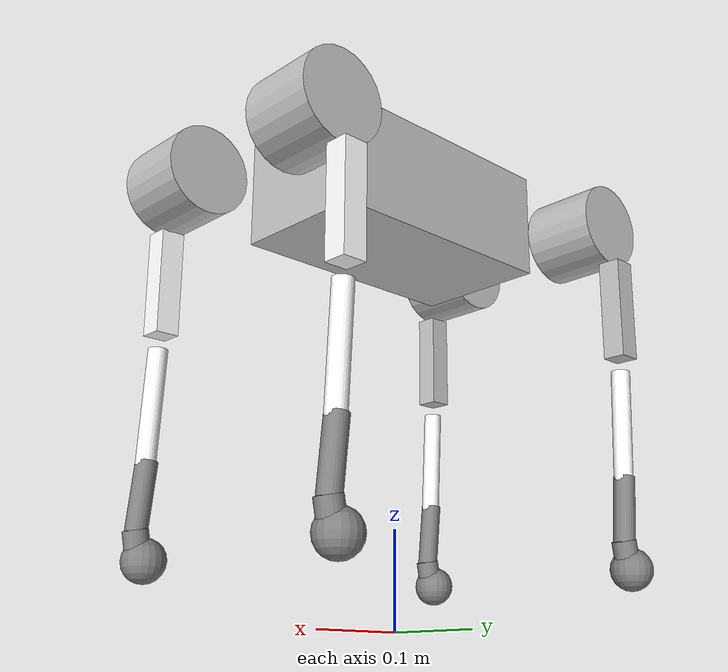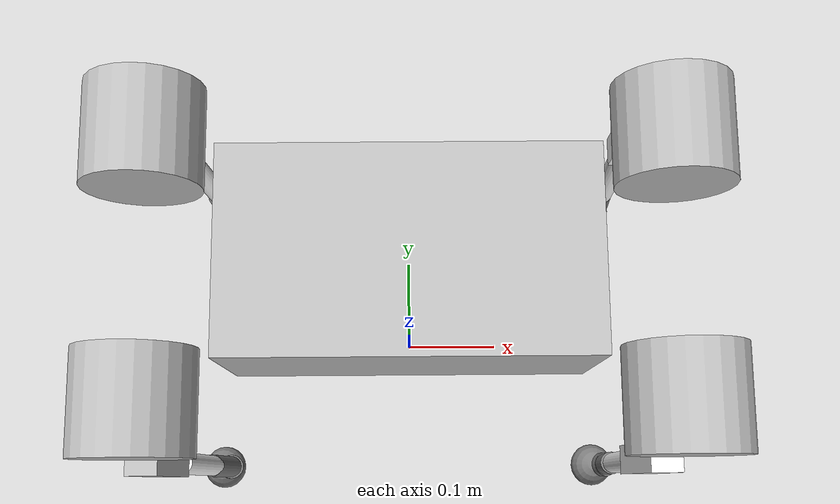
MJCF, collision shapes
<mujoco model="TOE_dog">

  <compiler angle="radian" meshdir="assets" autolimits="true"/>
  <option cone="elliptic" impratio="100" />
  <default>
    <default class="dog">
      <geom friction="0.4" margin="0.001" condim="1"/>
      <joint axis="0 1 0" damping="0.1" armature="0.005" frictionloss="0.05"/>
      <motor ctrlrange="-23.7 23.7"/>
      <default class="visual">
        <geom type="mesh" contype="0" conaffinity="0" group="2"/>
      </default>

      <default class="collision">
        <geom group="3"/>
        <default class="foot">
          <geom size="0.022" pos="-0.002 0 -0.20051" priority="1" condim="6"
            friction="1.2 0.02 0.01"/>
        </default>
      </default>

    </default>
  </default>
  <asset>
    <material name="metal" rgba=".9 .95 .95 1" />
    <material name="black" rgba="0 0 0 1" />
    <material name="white" rgba="1 1 1 1" />

    <material name="gray" rgba="0.671705 0.692426 0.774270 1" />
    <mesh name="TOE_base" file="TOE_base.STL"/>
    <mesh name="TOE_FL_hip" file="TOE_FL_hip.STL"/>
    <mesh name="TOE_L_thigh" file="TOE_L_thigh.STL"/>
    <mesh name="TOE_calf" file="TOE_calf.STL"/>
    <mesh name="TOE_foot" file="TOE_foot.STL"/>
    <mesh file="foot.obj" />
    <mesh name="TOE_FR_hip" file="TOE_FR_hip.STL"/>
    <mesh name="TOE_R_thigh" file="TOE_R_thigh.STL"/>
    <mesh name="TOE_RL_hip" file="TOE_RL_hip.STL"/>
    <mesh name="TOE_RR_hip" file="TOE_RR_hip.STL"/>
  </asset>

  <worldbody>
    <body name="base" pos="0 0 0.445" childclass="dog">
    <inertial pos="0 0 0" quat="-0.000543471 0.713435 -0.00173769 0.700719"
      mass="5.1234705"
      diaginertia="0.0656641 0.0578995 0.0175231" />
    <freejoint />
    <site name='imu' size='0.01' pos='0.0 0 0.0'/>
    <geom type="mesh" contype="0" conaffinity="0" group="1" density="0" rgba="0.752941 0.752941 0.752941 1" mesh="TOE_base"/>
    <geom size="0.135 0.075 0.057" type="box" rgba="0.752941 0.752941 0.752941 1"/>

    <body name="FL_hip" pos="0.2 0.05 0">
      <inertial pos="0 0 0" quat="0.485437 0.52726 0.503798 0.48222" mass="0.669901" diaginertia="0.000851635 0.000609749 0.000545446"/>
      <joint name="FL_hip_joint" pos="0 0 0" axis="1 0 0" range="-1 1" actuatorfrcrange="-23 23"/>

      <geom type="mesh" contype="0" conaffinity="0" group="1" density="0" rgba="0.752941 0.752941 0.752941 1" mesh="TOE_FL_hip"/>
      <geom size="0.046 0.04" pos="0 0.05 0" quat="0.707105 0.707108 0 0" type="cylinder" rgba="0.752941 0.752941 0.752941 1"/>

      <body name="FL_thigh" pos="0 0.08953 0">
        <inertial pos="0 -0.0225193 -0.0253115" quat="0.980354 0.13425 0.0229827 -0.142673" mass="1.05419" diaginertia="0.00435723 0.00426548 0.00116428"/>
        <joint name="FL_thigh_joint" pos="0 0 0" axis="0 1 0" range="-1.5 2.5" actuatorfrcrange="-23 23"/>
        <geom type="mesh" contype="0" conaffinity="0" group="1" density="0" rgba="0.752941 0.752941 0.752941 1" mesh="TOE_L_thigh"/>
        <geom size="0.055 0.01225 0.0125" pos="-0.005 0 -0.1" quat="0.707107 0 0.707107 0" type="box" rgba="1 1 1 1"/>
        <body name="FL_calf" pos="0 0 -0.18">
          <inertial pos="2.20012e-06 0 -0.0899722" quat="0.768153 0.0269288 0.0143643 0.639538" mass="0.22" diaginertia="0.00164183 0.00163561 5.05888e-05"/>

          <joint name="FL_calf_joint" pos="0 0 0" axis="0 1 0" range="-2.6 -0.15" actuatorfrcrange="-35 35"/>
          <geom type="mesh" contype="0" conaffinity="0" group="2" density="0" rgba="0.752941 0.752941 0.752941 1" mesh="TOE_calf"/>

          <geom size="0.01 0.06" pos="0 0 -0.05" quat="0.999688 0 -0.0249974 0" type="cylinder" rgba="1 1 1 1"/>
          <geom size="0.011 0.035" pos="0.005 0 -0.14" quat="0.99875 0 -0.0499792 0" type="cylinder"/>
          <geom size="0.0125 0.01" pos="0.007203 0 -0.18199" quat="0.995004 0 0.0998334 0" type="cylinder"/>

          <geom pos="0 0 -0.20051" mesh="foot" class="visual" material="black" />
          <geom name="FL" class="foot" />
          <body name="FL_foot" pos="0 0 -0.20051" />

        </body>
      </body>
    </body>
    <body name="FR_hip" pos="0.2 -0.05 0">
      <inertial pos="0 0 0" quat="0.503798 0.48222 0.485437 0.52726" mass="0.669901" diaginertia="0.000851635 0.000609749 0.000545446"/>
      <joint name="FR_hip_joint" pos="0 0 0" axis="1 0 0" range="-1 1" actuatorfrcrange="-23 23"/>
      <geom type="mesh" contype="0" conaffinity="0" group="1" density="0" rgba="0.752941 0.752941 0.752941 1" mesh="TOE_FR_hip"/>
      <geom size="0.046 0.04" pos="0 -0.05 0" quat="0.707107 0.707107 0 0" type="cylinder" rgba="0.752941 0.752941 0.752941 1"/>
      <body name="FR_thigh" pos="0 -0.08953 0">
        <inertial pos="0 0.022389 -0.026316" quat="0.988507 -0.136232 -0.00402235 -0.0654148" mass="1.05822" diaginertia="0.00435124 0.00427162 0.00116411"/>
        <joint name="FR_thigh_joint" pos="0 0 0" axis="0 1 0" range="-1.5 2.5" actuatorfrcrange="-23 23"/>
        <geom type="mesh" contype="0" conaffinity="0" group="1" density="0" rgba="0.75294 0.75294 0.75294 1" mesh="TOE_R_thigh"/>
        <geom size="0.055 0.01225 0.0125" pos="-0.005 0 -0.1" quat="0.707107 0 0.707107 0" type="box" rgba="1 1 1 1"/>
        <body name="FR_calf" pos="0 0 -0.18">
          <inertial pos="2.20013e-06 0 -0.0899722" quat="0.784656 0.0173719 -0.000694465 0.619687" mass="0.22" diaginertia="0.00225074 0.0022481 4.70681e-05"/>

          <joint name="FR_calf_joint" pos="0 0 0" axis="0 1 0" range="-2.6 -0.15" actuatorfrcrange="-35 35"/>
          <geom type="mesh" contype="0" conaffinity="0" group="1" density="0" rgba="0.752941 0.752941 0.752941 1" mesh="TOE_calf"/>

                     <geom size="0.01 0.06" pos="0 0 -0.05" quat="0.999688 0 -0.0249974 0" type="cylinder" rgba="1 1 1 1"/>
          <geom size="0.011 0.035" pos="0.005 0 -0.14" quat="0.99875 0 -0.0499792 0" type="cylinder"/>
          <geom size="0.0125 0.01" pos="0.007203 0 -0.18199" quat="0.995004 0 0.0998334 0" type="cylinder"/>
          <geom pos="0 0 -0.20051" mesh="foot" class="visual" material="black" />

          <geom name="FR" class="foot" />
          <body name="FR_foot" pos="0 0 -0.20051" />

        </body>
      </body>
    </body>
    <body name="RL_hip" pos="-0.2 0.05 0">
      <inertial pos="0 0 0" quat="0.460656 0.523594 0.50641 0.507144" mass="0.669901" diaginertia="0.00085164 0.000609744 0.000545446"/>
      <joint name="RL_hip_joint" pos="0 0 0" axis="1 0 0" range="-1 1" actuatorfrcrange="-23 23"/>
      <geom type="mesh" contype="0" conaffinity="0" group="1" density="0" rgba="0.752941 0.752941 0.752941 1" mesh="TOE_RL_hip"/>
      <geom size="0.046 0.04" pos="0 0.05 0" quat="0.707107 0.707107 0 0" type="cylinder" rgba="0.752941 0.752941 0.752941 1"/>
      <body name="RL_thigh" pos="0 0.08953 0">
        <inertial pos="0 -0.0225193 -0.0253115" quat="0.989072 0.134036 0.028844 -0.0542121" mass="1.05419" diaginertia="0.00435414 0.00427351 0.00116666"/>
        <joint name="RL_thigh_joint" pos="0 0 0" axis="0 1 0" range="-1.5 2.5" actuatorfrcrange="-23 23"/>
        <geom type="mesh" contype="0" conaffinity="0" group="1" density="0" rgba="0.752941 0.752941 0.752941 1" mesh="TOE_L_thigh"/>
<geom size="0.055 0.01225 0.0125" pos="-0.005 0 -0.1" quat="0.707107 0 0.707107 0" type="box" rgba="0.752941 0.752941 0.752941 1"/>
        <body name="RL_calf" pos="0 0 -0.18">
          <inertial pos="2.20012e-06 0 -0.0899722" quat="0.589757 0.00217462 -0.0158376 0.807423" mass="0.22" diaginertia="0.00224982 0.0022483 4.68694e-05"/>
          <joint name="RL_calf_joint" pos="0 0 0" axis="0 1 0" range="-2.6 -0.15" actuatorfrcrange="-35 35"/>
          <geom type="mesh" contype="0" conaffinity="0" group="1" density="0" rgba="0.752941 0.752941 0.752941 1" mesh="TOE_calf"/>
          <geom size="0.01 0.06" pos="0 0 -0.05" quat="0.999688 0 -0.0249974 0" type="cylinder" rgba="1 1 1 1"/>
          <geom size="0.011 0.035" pos="0.005 0 -0.14" quat="0.99875 0 -0.0499792 0" type="cylinder"/>
          <geom size="0.0125 0.01" pos="0.007203 0 -0.18199" quat="0.995004 0 0.0998334 0" type="cylinder"/>
          <geom pos="0 0 -0.20051" mesh="foot" class="visual" material="black" />
          <geom name="RL" class="foot" />
          <body name="RL_foot" pos="0 0 -0.20051" />
        </body>
      </body>
    </body>
    <body name="RR_hip" pos="-0.2 -0.05 0">
      <inertial pos="0 0 0" quat="0.50641 0.507144 0.460656 0.523594" mass="0.669901" diaginertia="0.00085164 0.000609744 0.000545446"/>
      <joint name="RR_hip_joint" pos="0 0 0" axis="1 0 0" range="-1 1" actuatorfrcrange="-23 23"/>
      <geom type="mesh" contype="0" conaffinity="0" group="1" density="0" rgba="0.752941 0.752941 0.752941 1" mesh="TOE_RR_hip"/>
      <geom size="0.046 0.04" pos="0 -0.05 0" quat="0.707107 0.707107 0 0" type="cylinder" rgba="0.752941 0.752941 0.752941 1"/>
      <body name="RR_thigh" pos="0 -0.08953 0">
        <inertial pos="0 0.0223887 -0.0263162" quat="0.98398 -0.0928968 0.0223897 0.150504" mass="1.05822" diaginertia="0.0044277 0.00434271 0.00116706"/>
        <joint name="RR_thigh_joint" pos="0 0 0" axis="0 1 0" range="-1.5 2.5" actuatorfrcrange="-23 23"/>
        <geom type="mesh" contype="0" conaffinity="0" group="1" density="0" rgba="0.752941 0.752941 0.752941 1" mesh="TOE_R_thigh"/>
          <geom size="0.055 0.01225 0.0125" pos="-0.005 0 -0.1" quat="0.707107 0 0.707107 0" type="box" rgba="0.752941 0.752941 0.752941 1"/>
        <body name="RR_calf" pos="0 0 -0.18">
          <inertial pos="2.20012e-06 0 -0.0899722" quat="0.633334 0.00270795 -0.015959 0.773709" mass="0.22" diaginertia="0.00225069 0.00224833 4.69019e-05"/>
          <joint name="RR_calf_joint" pos="0 0 0" axis="0 1 0" range="-2.6 -0.15" actuatorfrcrange="-35 35"/>
          <geom type="mesh" contype="0" conaffinity="0" group="1" density="0" rgba="0.752941 0.752941 0.752941 1" mesh="TOE_calf"/>
          <geom size="0.01 0.06" pos="0 0 -0.05" quat="0.999688 0 -0.0249974 0" type="cylinder" rgba="1 1 1 1"/>
          <geom size="0.011 0.035" pos="0.005 0 -0.14" quat="0.99875 0 -0.0499792 0" type="cylinder"/>
          <geom size="0.0125 0.01" pos="0.007203 0 -0.18199" quat="0.995004 0 0.0998334 0" type="cylinder"/>
          <geom pos="0 0 -0.20051" mesh="foot" class="visual" material="black" />
          <geom name="RR" class="foot" />
          <body name="RR_foot" pos="0 0 -0.20051" />
          </body>
        </body>
      </body>
    </body>
  </worldbody>
  <actuator>

    <motor name="FL_hip_joint" joint="FL_hip_joint" gear="1" ctrllimited="true" ctrlrange="-20 20"/>
		<motor name="FL_thigh_joint" joint="FL_thigh_joint" gear="1" ctrllimited="true" ctrlrange="-20 20"/>
		<motor name="FL_calf_joint" joint="FL_calf_joint" gear="1" ctrllimited="true" ctrlrange="-25 25"/>

		<motor name="FR_hip_joint" joint="FR_hip_joint" gear="1" ctrllimited="true" ctrlrange="-20 20"/>
		<motor name="FR_thigh_joint" joint="FR_thigh_joint" gear="1" ctrllimited="true" ctrlrange="-20 20"/>
		<motor name="FR_calf_joint" joint="FR_calf_joint" gear="1" ctrllimited="true" ctrlrange="-25 25"/>

    <motor name="RL_hip_joint" joint="RL_hip_joint" gear="1" ctrllimited="true" ctrlrange="-20 20"/>
		<motor name="RL_thigh_joint" joint="RL_thigh_joint" gear="1" ctrllimited="true" ctrlrange="-20 20"/>
		<motor name="RL_calf_joint" joint="RL_calf_joint" gear="1" ctrllimited="true" ctrlrange="-25 25"/>

		<motor name="RR_hip_joint" joint="RR_hip_joint" gear="1" ctrllimited="true" ctrlrange="-20 20"/>
		<motor name="RR_thigh_joint" joint="RR_thigh_joint" gear="1" ctrllimited="true" ctrlrange="-20 20"/>
		<motor name="RR_calf_joint" joint="RR_calf_joint" gear="1" ctrllimited="true" ctrlrange="-25 25"/>

  </actuator>
  <sensor>
    <jointpos name="FL_hip_pos" joint="FL_hip_joint" />
    <jointpos name="FL_thigh_pos" joint="FL_thigh_joint" />
    <jointpos name="FL_calf_pos" joint="FL_calf_joint" />
    <jointpos name="FR_hip_pos" joint="FR_hip_joint" />
    <jointpos name="FR_thigh_pos" joint="FR_thigh_joint" />
    <jointpos name="FR_calf_pos" joint="FR_calf_joint" />
    <jointpos name="RL_hip_pos" joint="RL_hip_joint" />
    <jointpos name="RL_thigh_pos" joint="RL_thigh_joint" />
    <jointpos name="RL_calf_pos" joint="RL_calf_joint" />
    <jointpos name="RR_hip_pos" joint="RR_hip_joint" />
    <jointpos name="RR_thigh_pos" joint="RR_thigh_joint" />
    <jointpos name="RR_calf_pos" joint="RR_calf_joint" />

    <jointvel name="FL_hip_vel" joint="FL_hip_joint" />
    <jointvel name="FL_thigh_vel" joint="FL_thigh_joint" />
    <jointvel name="FL_calf_vel" joint="FL_calf_joint" />
    <jointvel name="FR_hip_vel" joint="FR_hip_joint" />
    <jointvel name="FR_thigh_vel" joint="FR_thigh_joint" />
    <jointvel name="FR_calf_vel" joint="FR_calf_joint" />
    <jointvel name="RL_hip_vel" joint="RL_hip_joint" />
    <jointvel name="RL_thigh_vel" joint="RL_thigh_joint" />
    <jointvel name="RL_calf_vel" joint="RL_calf_joint" />
    <jointvel name="RR_hip_vel" joint="RR_hip_joint" />
    <jointvel name="RR_thigh_vel" joint="RR_thigh_joint" />
    <jointvel name="RR_calf_vel" joint="RR_calf_joint" />

    <jointactuatorfrc name="FL_hip_torque" joint="FL_hip_joint" noise="0.01" />
    <jointactuatorfrc name="FL_thigh_torque" joint="FL_thigh_joint" noise="0.01" />
    <jointactuatorfrc name="FL_calf_torque" joint="FL_calf_joint" noise="0.01" />
    <jointactuatorfrc name="FR_hip_torque" joint="FR_hip_joint" noise="0.01" />
    <jointactuatorfrc name="FR_thigh_torque" joint="FR_thigh_joint" noise="0.01" />
    <jointactuatorfrc name="FR_calf_torque" joint="FR_calf_joint" noise="0.01" />
    <jointactuatorfrc name="RL_hip_torque" joint="RL_hip_joint" noise="0.01" />
    <jointactuatorfrc name="RL_thigh_torque" joint="RL_thigh_joint" noise="0.01" />
    <jointactuatorfrc name="RL_calf_torque" joint="RL_calf_joint" noise="0.01" />
    <jointactuatorfrc name="RR_hip_torque" joint="RR_hip_joint" noise="0.01" />
    <jointactuatorfrc name="RR_thigh_torque" joint="RR_thigh_joint" noise="0.01" />
    <jointactuatorfrc name="RR_calf_torque" joint="RR_calf_joint" noise="0.01" />

    <framequat     name='orientation' objtype='site' noise='0.001' objname='imu'/>
    <framepos      name='position' objtype='site' noise='0.001' objname='imu'/>
    <framelinvel  name="base_lin_vel" objtype="site" objname="imu" />
    <gyro          name='angular-velocity'    site='imu' noise='0.005' cutoff='34.9'/>
    <velocimeter   name='linear-velocity'     site='imu' noise='0.001' cutoff='30'/>
    <accelerometer name='linear-acceleration' site='imu' noise='0.005' cutoff='157'/>
    <magnetometer  name='magnetometer'        site='imu'/>

  </sensor>
</mujoco>
